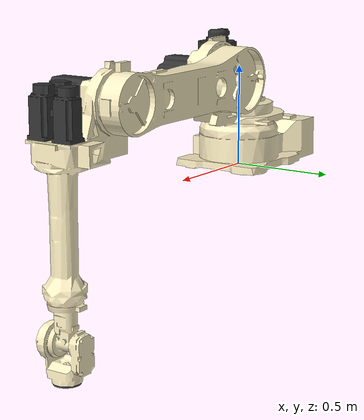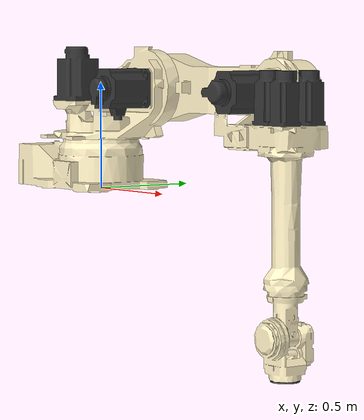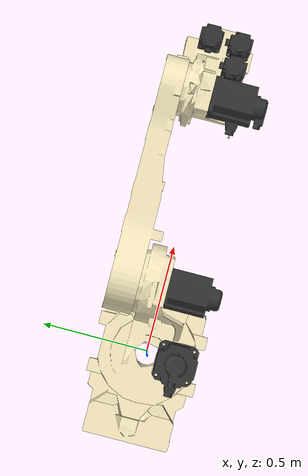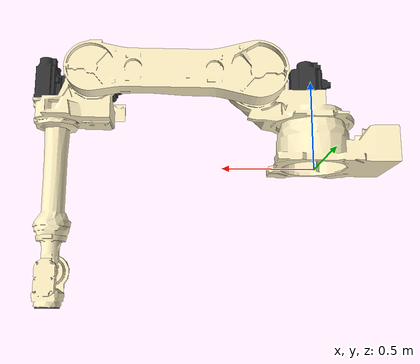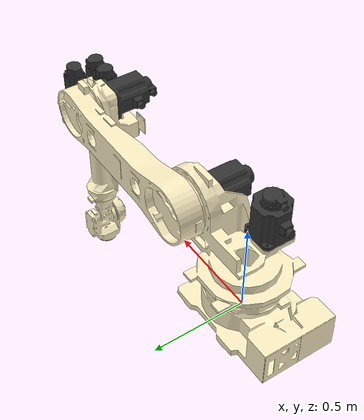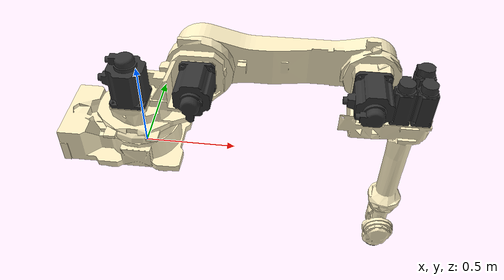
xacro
<?xml version="1.0"?>
<robot name="hdr_robot" xmlns:xacro="http://ros.org/wiki/xacro">
  <material name="ivory">
    <color rgba="1.0 0.945 0.773 1.0" />
  </material>
  <material name="black">
    <color rgba="0.2 0.2 0.2 1.0"/>
  </material>
  <material name="gray">
    <color rgba="0.3 0.3 0.3 1.0"/>
  </material>
  <xacro:property name="mesh_scale" value="0.001" />
  <link name="base_link">
    <visual>
      <geometry>
        <mesh filename="file://$(find hdr_description)/meshes/robots/hdr50_22/visual/base_body.stl" scale="${mesh_scale} ${mesh_scale} ${mesh_scale}"/>
      </geometry>
      <material name="ivory"/>
    </visual>
    <collision>
      <geometry>
        <mesh filename="file://$(find hdr_description)/meshes/robots/hdr50_22/collision/base_body.stl" scale="${mesh_scale} ${mesh_scale} ${mesh_scale}"/>
      </geometry>
    </collision>
    <inertial>
      <mass value="191.6327"/>
      <origin xyz="0 0 0" rpy="0 0 0"/>
      <inertia ixx="5.1043" ixy="0" ixz="0" iyy="8.435" iyz="0" izz="10.0889"/>
    </inertial>
  </link>
  <link name="lower_frame_link">
    <visual>
      <geometry>
        <mesh filename="file://$(find hdr_description)/meshes/robots/hdr50_22/visual/lower_frame.stl" scale="${mesh_scale} ${mesh_scale} ${mesh_scale}"/>
      </geometry>
      <material name="ivory"/>
    </visual>
    <collision>
      <geometry>
        <mesh filename="file://$(find hdr_description)/meshes/robots/hdr50_22/collision/lower_frame.stl" scale="${mesh_scale} ${mesh_scale} ${mesh_scale}"/>
      </geometry>
    </collision>
    <inertial>
      <mass value="249.1398"/>
      <origin xyz="0 0 0" rpy="0 0 0"/>
      <inertia ixx="9.0293" ixy="0" ixz="0" iyy="14.5972" iyz="0" izz="15.9487"/>
    </inertial>
  </link>
  <link name="upper_frame_link">
    <visual>
      <geometry>
        <mesh filename="file://$(find hdr_description)/meshes/robots/hdr50_22/visual/upper_frame.stl" scale="${mesh_scale} ${mesh_scale} ${mesh_scale}"/>
      </geometry>
      <material name="ivory"/>
    </visual>
    <collision>
      <geometry>
        <mesh filename="file://$(find hdr_description)/meshes/robots/hdr50_22/collision/upper_frame.stl" scale="${mesh_scale} ${mesh_scale} ${mesh_scale}"/>
      </geometry>
    </collision>
    <inertial>
      <mass value="109.8468"/>
      <origin xyz="0 0 0" rpy="0 0 0"/>
      <inertia ixx="12.902" ixy="0" ixz="0" iyy="13.5899" iyz="0" izz="1.3022"/>
    </inertial>
  </link>
  <link name="arm_link">
    <visual>
      <origin xyz="0 0 0" rpy="0 0 0"/>
      <geometry>
        <mesh filename="file://$(find hdr_description)/meshes/robots/hdr50_22/visual/arm.stl" scale="${mesh_scale} ${mesh_scale} ${mesh_scale}"/>
      </geometry>
      <material name="ivory"/>
    </visual>
    <collision>
      <origin xyz="0 0 0" rpy="0 0 0"/>
      <geometry>
        <mesh filename="file://$(find hdr_description)/meshes/robots/hdr50_22/collision/arm.stl" scale="${mesh_scale} ${mesh_scale} ${mesh_scale}"/>
      </geometry>
    </collision>
    <inertial>
      <mass value="181.1132"/>
      <origin xyz="0 0 0" rpy="0 0 0"/>
      <inertia ixx="4.9315" ixy="0" ixz="0" iyy="19.5114" iyz="0" izz="17.6324"/>
    </inertial>
  </link>
  <link name="wrist_body_link">
    <visual>
      <origin xyz="-0.321 0 0" rpy="0 0 0"/>
      <geometry>
        <mesh filename="file://$(find hdr_description)/meshes/robots/hdr50_22/visual/wrist_body.stl" scale="${mesh_scale} ${mesh_scale} ${mesh_scale}"/>
      </geometry>
      <material name="ivory"/>
    </visual>
    <collision>
      <origin xyz="-0.321 0 0" rpy="0 0 0"/>
      <geometry>
        <mesh filename="file://$(find hdr_description)/meshes/robots/hdr50_22/collision/wrist_body.stl" scale="${mesh_scale} ${mesh_scale} ${mesh_scale}"/>
      </geometry>
    </collision>
    <inertial>
      <mass value="41.8391"/>
      <origin xyz="0 0 0" rpy="0 0 0"/>
      <inertia ixx="0.1985" ixy="0" ixz="0" iyy="0.3124" iyz="0" izz="0.3324"/>
    </inertial>
  </link>
  <link name="wrist_holder_link">
    <visual>
      <geometry>
        <mesh filename="file://$(find hdr_description)/meshes/robots/hdr50_22/visual/wrist_holder.stl" scale="${mesh_scale} ${mesh_scale} ${mesh_scale}"/>
      </geometry>
      <material name="ivory"/>
    </visual>
    <collision>
      <geometry>
        <mesh filename="file://$(find hdr_description)/meshes/robots/hdr50_22/collision/wrist_holder.stl" scale="${mesh_scale} ${mesh_scale} ${mesh_scale}"/>
      </geometry>
    </collision>
    <inertial>
      <mass value="34.6422"/>
      <origin xyz="0 0 0" rpy="0 0 0"/>
      <inertia ixx="0.2478" ixy="0" ixz="0" iyy="0.3039" iyz="0" izz="0.3648"/>
    </inertial>
  </link>
  <link name="flange_link">
    <visual>
      <origin xyz="-1.535 0 0" rpy="0 0 0"/>
      <geometry>
        <mesh filename="file://$(find hdr_description)/meshes/robots/hdr50_22/visual/flange.stl" scale="${mesh_scale} ${mesh_scale} ${mesh_scale}"/>
      </geometry>
      <material name="gray"/>
    </visual>
    <collision>
      <origin xyz="-1.535 0 0" rpy="0 0 0"/>
      <geometry>
        <mesh filename="file://$(find hdr_description)/meshes/robots/hdr50_22/collision/flange.stl" scale="${mesh_scale} ${mesh_scale} ${mesh_scale}"/>
      </geometry>
    </collision>
    <inertial>
      <mass value="1.7863"/>
      <origin xyz="0 0 0" rpy="0 0 0"/>
      <inertia ixx="0.0046" ixy="0" ixz="0" iyy="0.0023" iyz="0" izz="0.0023"/>
    </inertial>
  </link>
  <link name="motor_s">
    <visual>
      <geometry>
        <mesh filename="file://$(find hdr_description)/meshes/robots/hdr50_22/visual/main_motor.stl" scale="${mesh_scale} ${mesh_scale} ${mesh_scale}"/>
      </geometry>
      <material name="black"/>
    </visual>
    <collision>
      <geometry>
        <mesh filename="file://$(find hdr_description)/meshes/robots/hdr50_22/collision/main_motor.stl" scale="${mesh_scale} ${mesh_scale} ${mesh_scale}"/>
      </geometry>
    </collision>
    <inertial>
      <mass value="0"/>
      <origin xyz="0 0 0" rpy="0 0 0"/>
      <inertia ixx="1e-6" ixy="0" ixz="0" iyy="1e-6" iyz="0" izz="1e-6"/>
    </inertial>
  </link>
  <link name="motor_h">
    <visual>
      <geometry>
        <mesh filename="file://$(find hdr_description)/meshes/robots/hdr50_22/visual/main_motor.stl" scale="${mesh_scale} ${mesh_scale} ${mesh_scale}"/>
      </geometry>
      <material name="black"/>
    </visual>
    <collision>
      <geometry>
        <mesh filename="file://$(find hdr_description)/meshes/robots/hdr50_22/collision/main_motor.stl" scale="${mesh_scale} ${mesh_scale} ${mesh_scale}"/>
      </geometry>
    </collision>
    <inertial>
      <mass value="0"/>
      <origin xyz="0 0 0" rpy="0 0 0"/>
      <inertia ixx="1e-6" ixy="0" ixz="0" iyy="1e-6" iyz="0" izz="1e-6"/>
    </inertial>
  </link>
  <link name="motor_v">
    <visual>
      <geometry>
        <mesh filename="file://$(find hdr_description)/meshes/robots/hdr50_22/visual/main_motor.stl" scale="${mesh_scale} ${mesh_scale} ${mesh_scale}"/>
      </geometry>
      <material name="black"/>
    </visual>
    <collision>
      <geometry>
        <mesh filename="file://$(find hdr_description)/meshes/robots/hdr50_22/collision/main_motor.stl" scale="${mesh_scale} ${mesh_scale} ${mesh_scale}"/>
      </geometry>
    </collision>
    <inertial>
      <mass value="0"/>
      <origin xyz="0 0 0" rpy="0 0 0"/>
      <inertia ixx="1e-6" ixy="0" ixz="0" iyy="1e-6" iyz="0" izz="1e-6"/>
    </inertial>
  </link>
  <link name="motor_w1">
    <visual>
      <geometry>
        <mesh filename="file://$(find hdr_description)/meshes/robots/hdr50_22/visual/wrist_motor.stl" scale="${mesh_scale} ${mesh_scale} ${mesh_scale}"/>
      </geometry>
      <material name="black"/>
    </visual>
    <collision>
      <geometry>
        <mesh filename="file://$(find hdr_description)/meshes/robots/hdr50_22/collision/wrist_motor.stl" scale="${mesh_scale} ${mesh_scale} ${mesh_scale}"/>
      </geometry>
    </collision>
    <inertial>
      <mass value="0"/>
      <origin xyz="0 0 0" rpy="0 0 0"/>
      <inertia ixx="1e-6" ixy="0" ixz="0" iyy="1e-6" iyz="0" izz="1e-6"/>
    </inertial>
  </link>
  <link name="motor_w2">
    <visual>
      <geometry>
        <mesh filename="file://$(find hdr_description)/meshes/robots/hdr50_22/visual/wrist_motor.stl" scale="${mesh_scale} ${mesh_scale} ${mesh_scale}"/>
      </geometry>
      <material name="black"/>
    </visual>
    <collision>
      <geometry>
        <mesh filename="file://$(find hdr_description)/meshes/robots/hdr50_22/collision/wrist_motor.stl" scale="${mesh_scale} ${mesh_scale} ${mesh_scale}"/>
      </geometry>
    </collision>
    <inertial>
      <mass value="0"/>
      <origin xyz="0 0 0" rpy="0 0 0"/>
      <inertia ixx="1e-6" ixy="0" ixz="0" iyy="1e-6" iyz="0" izz="1e-6"/>
    </inertial>
  </link>
  <link name="motor_w3">
    <visual>
      <geometry>
        <mesh filename="file://$(find hdr_description)/meshes/robots/hdr50_22/visual/wrist_motor.stl" scale="${mesh_scale} ${mesh_scale} ${mesh_scale}"/>
      </geometry>
      <material name="black"/>
    </visual>
    <collision>
      <geometry>
        <mesh filename="file://$(find hdr_description)/meshes/robots/hdr50_22/collision/wrist_motor.stl" scale="${mesh_scale} ${mesh_scale} ${mesh_scale}"/>
      </geometry>
    </collision>
    <inertial>
      <mass value="0"/>
      <origin xyz="0 0 0" rpy="0 0 0"/>
      <inertia ixx="1e-6" ixy="0" ixz="0" iyy="1e-6" iyz="0" izz="1e-6"/>
    </inertial>
  </link>

  <joint name="j1" type="revolute">
    <parent link="base_link"/>
    <child link="lower_frame_link"/>
    <origin xyz="0 0 0" rpy="0 0 0"/>
    <axis xyz="0 0 1"/>
    <limit lower="-3.142" upper="3.142" effort="3119.1" velocity="3.054"/>
  </joint>
  <joint name="j2" type="revolute">
    <parent link="lower_frame_link"/>
    <child link="upper_frame_link"/>
    <origin xyz="0.32 0 0.48" rpy="0 1.5708 0"/>
    <axis xyz="0 -1 0"/>
    <limit lower="-1.134" upper="2.967" effort="3169.68" velocity="3.054"/>
  </joint>
  <joint name="j3" type="revolute">
    <parent link="upper_frame_link"/>
    <child link="arm_link"/>
    <origin xyz="0 0 0.87" rpy="0 0 0"/>
    <axis xyz="0 -1 0"/>
    <limit lower="-1.396" upper="3.141" effort="2899.92" velocity="3.054"/>
  </joint>
  <joint name="j4" type="revolute">
    <parent link="arm_link"/>
    <child link="wrist_body_link"/>
    <origin xyz="0 0 0.2" rpy="0 0 0"/>
    <axis xyz="1 0 0"/>
    <limit lower="-6.283" upper="6.283" effort="480.7924" velocity="4.363"/>
  </joint>
  <joint name="j5" type="revolute">
    <parent link="wrist_body_link"/>
    <child link="wrist_holder_link"/>
    <origin xyz="1.03 0 0" rpy="0 0 0"/>
    <axis xyz="0 -1 0"/>
    <limit lower="-2.182" upper="2.182" effort="431.299" velocity="4.363"/>
  </joint>
  <joint name="j6" type="revolute">
    <parent link="wrist_holder_link"/>
    <child link="flange_link"/>
    <origin xyz="0.185 0 0" rpy="0 0 0"/>
    <axis xyz="1 0 0"/>
    <limit lower="-6.283" upper="6.283" effort="8.024" velocity="6.109"/>
  </joint>

  <joint name="joint_motor_s" type="fixed">
    <parent link="lower_frame_link"/>
    <child link="motor_s"/>
    <origin xyz="0 0 0" rpy="0 0 0"/>
    <axis xyz="1 0 0"/>
  </joint>
  <joint name="joint_motor_h" type="fixed">
    <parent link="lower_frame_link"/>
    <child link="motor_h"/>
    <origin xyz="0.19 0.416 0.48" rpy="0 -1.5708 1.5708"/>
    <axis xyz="1 0 0"/>
  </joint>
  <joint name="joint_motor_v" type="fixed">
    <parent link="arm_link"/>
    <child link="motor_v"/>
    <origin xyz="-0.13 0.434 0" rpy="0 -1.5708 1.5708"/>
    <axis xyz="1 0 0"/>
  </joint>
  <joint name="joint_motor_w1" type="fixed">
    <parent link="arm_link"/>
    <child link="motor_w1"/>
    <origin xyz="-0.32 0 -1.35" rpy="0 0 0"/>
    <axis xyz="1 0 0"/>
  </joint>
  <joint name="joint_motor_w2" type="fixed">
    <parent link="arm_link"/>
    <child link="motor_w2"/>
    <origin xyz="-0.32 1.553 0.173" rpy="1.5708 0 0"/>
    <axis xyz="1 0 0"/>
  </joint>
  <joint name="joint_motor_w3" type="fixed">
    <parent link="arm_link"/>
    <child link="motor_w3"/>
    <origin xyz="-0.32 1.553 0.067" rpy="1.5708 0 0"/>
    <axis xyz="1 0 0"/>
  </joint>

  <link name="base"/>
  <joint name="base_link-base" type="fixed">
    <origin xyz="0 0 0" rpy="0 0 0"/>
    <parent link="base_link"/>
    <child link="base"/>
  </joint>
  <link name="flange"/>
  <joint name="flange_link-flange" type="fixed">
    <origin xyz="0 0 0" rpy="0 0 0"/>
    <parent link="flange_link"/>
    <child link="flange"/>
  </joint>
  <link name="tool0"/>
  <joint name="flange-tool0" type="fixed">
    <origin xyz="0 0 0" rpy="0 1.5708 0"/>
    <parent link="flange"/>
    <child link="tool0"/>
  </joint>

  <link name="world"/>
  <joint name="world_joint" type="fixed">
    <parent link="world"/>
    <child link="base_link"/>
    <origin xyz="0 0 0" rpy="0 0 0"/>
  </joint>
</robot>
